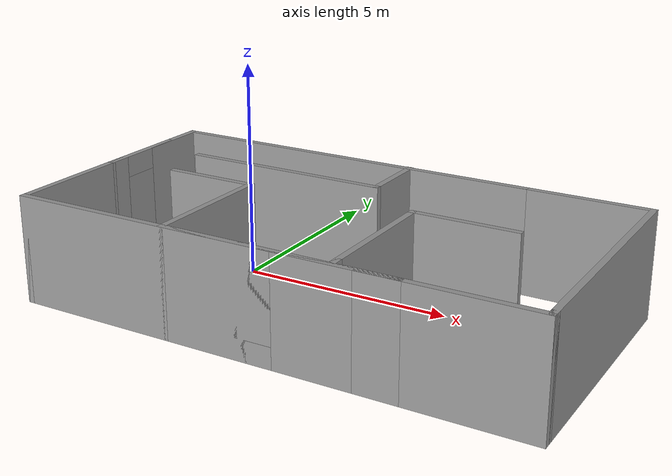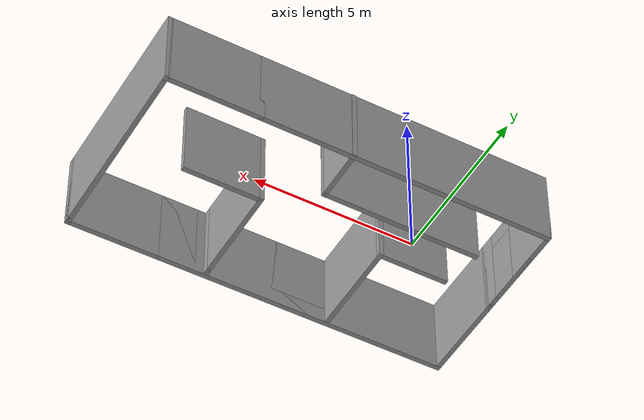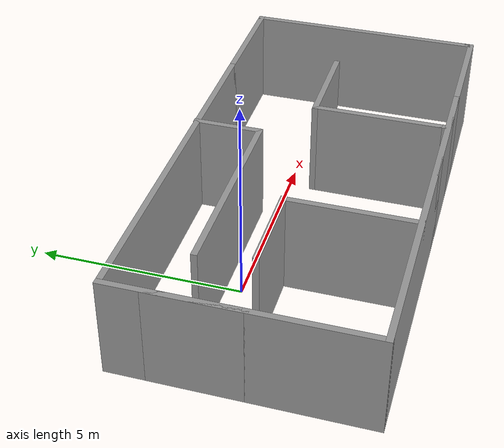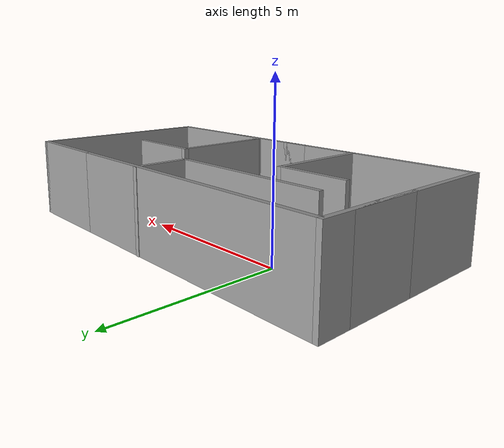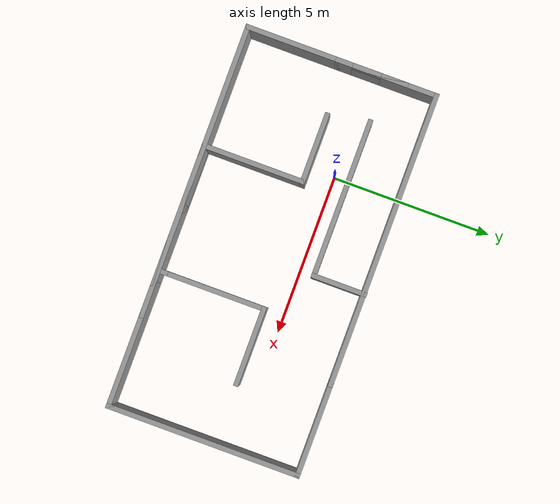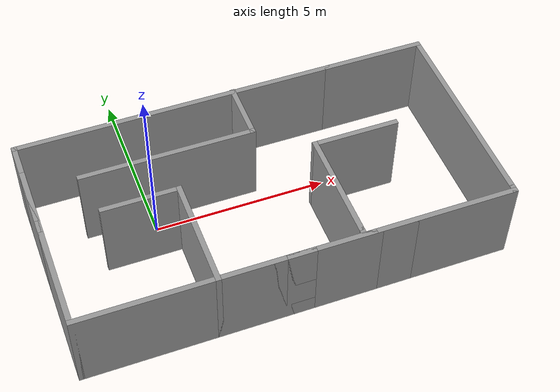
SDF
<?xml version='1.0'?>
<sdf version='1.7'>
  <model name='bzzroom'>
    <pose>2.76444 -0.93605 0 0 -0 0</pose>
    <link name='Wall_0'>
      <collision name='Wall_0_Collision'>
        <geometry>
          <box>
            <size>3 0.15 2.5</size>
          </box>
        </geometry>
        <pose>0 0 1.25 0 -0 0</pose>
      </collision>
      <visual name='Wall_0_Visual'>
        <pose>0 0 1.25 0 -0 0</pose>
        <geometry>
          <box>
            <size>3 0.15 2.5</size>
          </box>
        </geometry>
        <material>
          <script>
            <uri>file://media/materials/scripts/gazebo.material</uri>
            <name>Gazebo/Grey</name>
          </script>
          <ambient>1 1 1 1</ambient>
        </material>
        <meta>
          <layer>0</layer>
        </meta>
      </visual>
      <pose>-5.97444 -1.55895 0 0 -0 -1.5708</pose>
    </link>
    <link name='Wall_1'>
      <collision name='Wall_1_Collision'>
        <geometry>
          <box>
            <size>9.25 0.15 2.5</size>
          </box>
        </geometry>
        <pose>0 0 1.25 0 -0 0</pose>
      </collision>
      <visual name='Wall_1_Visual'>
        <pose>0 0 1.25 0 -0 0</pose>
        <geometry>
          <box>
            <size>9.25 0.15 2.5</size>
          </box>
        </geometry>
        <material>
          <script>
            <uri>file://media/materials/scripts/gazebo.material</uri>
            <name>Gazebo/Grey</name>
          </script>
          <ambient>1 1 1 1</ambient>
        </material>
        <meta>
          <layer>0</layer>
        </meta>
      </visual>
      <pose>-1.42444 -2.98395 0 0 -0 0</pose>
    </link>
    <link name='Wall_10'>
      <pose>-5.97444 1.41605 0 0 -0 1.5708</pose>
      <visual name='Wall_10_Visual_0'>
        <pose>-1.35618 0 1.25 0 -0 0</pose>
        <geometry>
          <box>
            <size>0.537631 0.15 2.5</size>
          </box>
        </geometry>
        <material>
          <script>
            <uri>file://media/materials/scripts/gazebo.material</uri>
            <name>Gazebo/Grey</name>
          </script>
          <ambient>1 1 1 1</ambient>
        </material>
        <meta>
          <layer>0</layer>
        </meta>
      </visual>
      <collision name='Wall_10_Collision_0'>
        <geometry>
          <box>
            <size>0.537631 0.15 2.5</size>
          </box>
        </geometry>
        <pose>-1.35618 0 1.25 0 -0 0</pose>
      </collision>
      <visual name='Wall_10_Visual_1'>
        <pose>0.718816 0 1.25 0 -0 0</pose>
        <geometry>
          <box>
            <size>1.81237 0.15 2.5</size>
          </box>
        </geometry>
        <material>
          <script>
            <uri>file://media/materials/scripts/gazebo.material</uri>
            <name>Gazebo/Grey</name>
          </script>
          <ambient>1 1 1 1</ambient>
        </material>
        <meta>
          <layer>0</layer>
        </meta>
      </visual>
      <collision name='Wall_10_Collision_1'>
        <geometry>
          <box>
            <size>1.81237 0.15 2.5</size>
          </box>
        </geometry>
        <pose>0.718816 0 1.25 0 -0 0</pose>
      </collision>
      <visual name='Wall_10_Visual_2'>
        <pose>-0.637369 0 2.25 0 -0 0</pose>
        <geometry>
          <box>
            <size>0.9 0.15 0.5</size>
          </box>
        </geometry>
        <material>
          <script>
            <uri>file://media/materials/scripts/gazebo.material</uri>
            <name>Gazebo/Grey</name>
          </script>
          <ambient>1 1 1 1</ambient>
        </material>
        <meta>
          <layer>0</layer>
        </meta>
      </visual>
      <collision name='Wall_10_Collision_2'>
        <geometry>
          <box>
            <size>0.9 0.15 0.5</size>
          </box>
        </geometry>
        <pose>-0.637369 0 2.25 0 -0 0</pose>
      </collision>
    </link>
    <link name='Wall_11'>
      <collision name='Wall_11_Collision'>
        <geometry>
          <box>
            <size>9.25 0.15 2.5</size>
          </box>
        </geometry>
        <pose>0 0 1.25 0 -0 0</pose>
      </collision>
      <visual name='Wall_11_Visual'>
        <pose>0 0 1.25 0 -0 0</pose>
        <geometry>
          <box>
            <size>9.25 0.15 2.5</size>
          </box>
        </geometry>
        <material>
          <script>
            <uri>file://media/materials/scripts/gazebo.material</uri>
            <name>Gazebo/Grey</name>
          </script>
          <ambient>1 1 1 1</ambient>
        </material>
        <meta>
          <layer>0</layer>
        </meta>
      </visual>
      <pose>-1.42444 2.96605 0 0 -0 0</pose>
    </link>
    <link name='Wall_12'>
      <collision name='Wall_12_Collision'>
        <geometry>
          <box>
            <size>3 0.15 2.5</size>
          </box>
        </geometry>
        <pose>0 0 1.25 0 -0 0</pose>
      </collision>
      <visual name='Wall_12_Visual'>
        <pose>0 0 1.25 0 -0 0</pose>
        <geometry>
          <box>
            <size>3 0.15 2.5</size>
          </box>
        </geometry>
        <material>
          <script>
            <uri>file://media/materials/scripts/gazebo.material</uri>
            <name>Gazebo/Grey</name>
          </script>
          <ambient>1 1 1 1</ambient>
        </material>
        <meta>
          <layer>0</layer>
        </meta>
      </visual>
      <pose>4.55056 2.96605 0 0 -0 0</pose>
    </link>
    <link name='Wall_13'>
      <collision name='Wall_13_Collision'>
        <geometry>
          <box>
            <size>6 0.15 2.5</size>
          </box>
        </geometry>
        <pose>0 0 1.25 0 -0 0</pose>
      </collision>
      <visual name='Wall_13_Visual'>
        <pose>0 0 1.25 0 -0 0</pose>
        <geometry>
          <box>
            <size>6 0.15 2.5</size>
          </box>
        </geometry>
        <material>
          <script>
            <uri>file://media/materials/scripts/gazebo.material</uri>
            <name>Gazebo/Grey</name>
          </script>
          <ambient>1 1 1 1</ambient>
        </material>
        <meta>
          <layer>0</layer>
        </meta>
      </visual>
      <pose>5.97556 0.04105 0 0 -0 -1.5708</pose>
    </link>
    <link name='Wall_14'>
      <collision name='Wall_14_Collision'>
        <geometry>
          <box>
            <size>0.15 0.15 2.5</size>
          </box>
        </geometry>
        <pose>0 0 1.25 0 -0 0</pose>
      </collision>
      <visual name='Wall_14_Visual'>
        <pose>0 0 1.25 0 -0 0</pose>
        <geometry>
          <box>
            <size>0.15 0.15 2.5</size>
          </box>
        </geometry>
        <material>
          <script>
            <uri>file://media/materials/scripts/gazebo.material</uri>
            <name>Gazebo/Grey</name>
          </script>
          <ambient>1 1 1 1</ambient>
        </material>
        <meta>
          <layer>0</layer>
        </meta>
      </visual>
      <pose>5.97556 -2.88395 0 0 -0 0</pose>
    </link>
    <link name='Wall_15'>
      <collision name='Wall_15_Collision'>
        <geometry>
          <box>
            <size>0.15 0.15 2.5</size>
          </box>
        </geometry>
        <pose>0 0 1.25 0 -0 0</pose>
      </collision>
      <visual name='Wall_15_Visual'>
        <pose>0 0 1.25 0 -0 0</pose>
        <geometry>
          <box>
            <size>0.15 0.15 2.5</size>
          </box>
        </geometry>
        <material>
          <script>
            <uri>file://media/materials/scripts/gazebo.material</uri>
            <name>Gazebo/Grey</name>
          </script>
          <ambient>1 1 1 1</ambient>
        </material>
        <meta>
          <layer>0</layer>
        </meta>
      </visual>
      <pose>5.97556 -2.88395 0 0 -0 0</pose>
    </link>
    <link name='Wall_16'>
      <collision name='Wall_16_Collision'>
        <geometry>
          <box>
            <size>0.25 0.15 2.5</size>
          </box>
        </geometry>
        <pose>0 0 1.25 0 -0 0</pose>
      </collision>
      <visual name='Wall_16_Visual'>
        <pose>0 0 1.25 0 -0 0</pose>
        <geometry>
          <box>
            <size>0.25 0.15 2.5</size>
          </box>
        </geometry>
        <material>
          <script>
            <uri>file://media/materials/scripts/gazebo.material</uri>
            <name>Gazebo/Grey</name>
          </script>
          <ambient>1 1 1 1</ambient>
        </material>
        <meta>
          <layer>0</layer>
        </meta>
      </visual>
      <pose>5.97556 -2.93395 0 0 -0 -1.5708</pose>
    </link>
    <link name='Wall_17'>
      <collision name='Wall_17_Collision'>
        <geometry>
          <box>
            <size>4 0.15 2.5</size>
          </box>
        </geometry>
        <pose>0 0 1.25 0 -0 0</pose>
      </collision>
      <visual name='Wall_17_Visual'>
        <pose>0 0 1.25 0 -0 0</pose>
        <geometry>
          <box>
            <size>4 0.15 2.5</size>
          </box>
        </geometry>
        <material>
          <script>
            <uri>file://media/materials/scripts/gazebo.material</uri>
            <name>Gazebo/Grey</name>
          </script>
          <ambient>1 1 1 1</ambient>
        </material>
        <meta>
          <layer>0</layer>
        </meta>
      </visual>
      <pose>4.05056 -2.98395 0 0 -0 3.14159</pose>
    </link>
    <link name='Wall_18'>
      <pose>-0.049437 -2.98395 0 0 -0 3.14159</pose>
      <visual name='Wall_18_Visual_0'>
        <pose>-1.35048 0 1.25 0 -0 0</pose>
        <geometry>
          <box>
            <size>1.79905 0.15 2.5</size>
          </box>
        </geometry>
        <material>
          <script>
            <uri>file://media/materials/scripts/gazebo.material</uri>
            <name>Gazebo/Grey</name>
          </script>
          <ambient>1 1 1 1</ambient>
        </material>
        <meta>
          <layer>0</layer>
        </meta>
      </visual>
      <collision name='Wall_18_Collision_0'>
        <geometry>
          <box>
            <size>1.79905 0.15 2.5</size>
          </box>
        </geometry>
        <pose>-1.35048 0 1.25 0 -0 0</pose>
      </collision>
      <visual name='Wall_18_Visual_1'>
        <pose>0.899525 0 0.25 0 -0 0</pose>
        <geometry>
          <box>
            <size>2.70095 0.15 0.5</size>
          </box>
        </geometry>
        <material>
          <script>
            <uri>file://media/materials/scripts/gazebo.material</uri>
            <name>Gazebo/Grey</name>
          </script>
          <ambient>1 1 1 1</ambient>
        </material>
        <meta>
          <layer>0</layer>
        </meta>
      </visual>
      <collision name='Wall_18_Collision_1'>
        <geometry>
          <box>
            <size>2.70095 0.15 0.5</size>
          </box>
        </geometry>
        <pose>0.899525 0 0.25 0 -0 0</pose>
      </collision>
      <visual name='Wall_18_Visual_2'>
        <pose>1.29953 0 1.5 0 -0 0</pose>
        <geometry>
          <box>
            <size>1.90095 0.15 2</size>
          </box>
        </geometry>
        <material>
          <script>
            <uri>file://media/materials/scripts/gazebo.material</uri>
            <name>Gazebo/Grey</name>
          </script>
          <ambient>1 1 1 1</ambient>
        </material>
        <meta>
          <layer>0</layer>
        </meta>
      </visual>
      <collision name='Wall_18_Collision_2'>
        <geometry>
          <box>
            <size>1.90095 0.15 2</size>
          </box>
        </geometry>
        <pose>1.29953 0 1.5 0 -0 0</pose>
      </collision>
      <visual name='Wall_18_Visual_3'>
        <pose>-0.05095 0 1.9 0 -0 0</pose>
        <geometry>
          <box>
            <size>0.8 0.15 1.2</size>
          </box>
        </geometry>
        <material>
          <script>
            <uri>file://media/materials/scripts/gazebo.material</uri>
            <name>Gazebo/Grey</name>
          </script>
          <ambient>1 1 1 1</ambient>
        </material>
        <meta>
          <layer>0</layer>
        </meta>
      </visual>
      <collision name='Wall_18_Collision_3'>
        <geometry>
          <box>
            <size>0.8 0.15 1.2</size>
          </box>
        </geometry>
        <pose>-0.05095 0 1.9 0 -0 0</pose>
      </collision>
    </link>
    <link name='Wall_19'>
      <collision name='Wall_19_Collision'>
        <geometry>
          <box>
            <size>3.25 0.15 2.5</size>
          </box>
        </geometry>
        <pose>0 0 1.25 0 -0 0</pose>
      </collision>
      <visual name='Wall_19_Visual'>
        <pose>0 0 1.25 0 -0 0</pose>
        <geometry>
          <box>
            <size>3.25 0.15 2.5</size>
          </box>
        </geometry>
        <material>
          <script>
            <uri>file://media/materials/scripts/gazebo.material</uri>
            <name>Gazebo/Grey</name>
          </script>
          <ambient>1 1 1 1</ambient>
        </material>
        <meta>
          <layer>0</layer>
        </meta>
      </visual>
      <pose>-2.22444 -1.43395 0 0 -0 1.5708</pose>
    </link>
    <link name='Wall_20'>
      <collision name='Wall_20_Collision'>
        <geometry>
          <box>
            <size>2.25 0.15 2.5</size>
          </box>
        </geometry>
        <pose>0 0 1.25 0 -0 0</pose>
      </collision>
      <visual name='Wall_20_Visual'>
        <pose>0 0 1.25 0 -0 0</pose>
        <geometry>
          <box>
            <size>2.25 0.15 2.5</size>
          </box>
        </geometry>
        <material>
          <script>
            <uri>file://media/materials/scripts/gazebo.material</uri>
            <name>Gazebo/Grey</name>
          </script>
          <ambient>1 1 1 1</ambient>
        </material>
        <meta>
          <layer>0</layer>
        </meta>
      </visual>
      <pose>-3.27444 0.11605 0 0 -0 3.14159</pose>
    </link>
    <link name='Wall_23'>
      <collision name='Wall_23_Collision'>
        <geometry>
          <box>
            <size>1.75 0.15 2.5</size>
          </box>
        </geometry>
        <pose>0 0 1.25 0 -0 0</pose>
      </collision>
      <visual name='Wall_23_Visual'>
        <pose>0 0 1.25 0 -0 0</pose>
        <geometry>
          <box>
            <size>1.75 0.15 2.5</size>
          </box>
        </geometry>
        <material>
          <script>
            <uri>file://media/materials/scripts/gazebo.material</uri>
            <name>Gazebo/Grey</name>
          </script>
          <ambient>1 1 1 1</ambient>
        </material>
        <meta>
          <layer>0</layer>
        </meta>
      </visual>
      <pose>0.275271 2.18395 0 0 -0 -1.5708</pose>
    </link>
    <link name='Wall_24'>
      <collision name='Wall_24_Collision'>
        <geometry>
          <box>
            <size>5 0.15 2.5</size>
          </box>
        </geometry>
        <pose>0 0 1.25 0 -0 0</pose>
      </collision>
      <visual name='Wall_24_Visual'>
        <pose>0 0 1.25 0 -0 0</pose>
        <geometry>
          <box>
            <size>5 0.15 2.5</size>
          </box>
        </geometry>
        <material>
          <script>
            <uri>file://media/materials/scripts/gazebo.material</uri>
            <name>Gazebo/Grey</name>
          </script>
          <ambient>1 1 1 1</ambient>
        </material>
        <meta>
          <layer>0</layer>
        </meta>
      </visual>
      <pose>-2.14973 1.38395 0 0 -0 3.14159</pose>
    </link>
    <link name='Wall_26'>
      <collision name='Wall_26_Collision'>
        <geometry>
          <box>
            <size>3.25 0.15 2.5</size>
          </box>
        </geometry>
        <pose>0 0 1.25 0 -0 0</pose>
      </collision>
      <visual name='Wall_26_Visual'>
        <pose>0 0 1.25 0 -0 0</pose>
        <geometry>
          <box>
            <size>3.25 0.15 2.5</size>
          </box>
        </geometry>
        <material>
          <script>
            <uri>file://media/materials/scripts/gazebo.material</uri>
            <name>Gazebo/Grey</name>
          </script>
          <ambient>1 1 1 1</ambient>
        </material>
        <meta>
          <layer>0</layer>
        </meta>
      </visual>
      <pose>1.70489 -1.21237 0 0 -0 -1.5708</pose>
    </link>
    <link name='Wall_29'>
      <collision name='Wall_29_Collision'>
        <geometry>
          <box>
            <size>0.25 0.15 2.5</size>
          </box>
        </geometry>
        <pose>0 0 1.25 0 -0 0</pose>
      </collision>
      <visual name='Wall_29_Visual'>
        <pose>0 0 1.25 0 -0 0</pose>
        <geometry>
          <box>
            <size>0.25 0.15 2.5</size>
          </box>
        </geometry>
        <material>
          <script>
            <uri>file://media/materials/scripts/gazebo.material</uri>
            <name>Gazebo/Grey</name>
          </script>
          <ambient>1 1 1 1</ambient>
        </material>
        <meta>
          <layer>0</layer>
        </meta>
      </visual>
      <pose>1.70489 -2.81237 0 0 -0 -1.5708</pose>
    </link>
    <link name='Wall_31'>
      <collision name='Wall_31_Collision'>
        <geometry>
          <box>
            <size>2.5 0.15 2.5</size>
          </box>
        </geometry>
        <pose>0 0 1.25 0 -0 0</pose>
      </collision>
      <visual name='Wall_31_Visual'>
        <pose>0 0 1.25 0 -0 0</pose>
        <geometry>
          <box>
            <size>2.5 0.15 2.5</size>
          </box>
        </geometry>
        <material>
          <script>
            <uri>file://media/materials/scripts/gazebo.material</uri>
            <name>Gazebo/Grey</name>
          </script>
          <ambient>1 1 1 1</ambient>
        </material>
        <meta>
          <layer>0</layer>
        </meta>
      </visual>
      <pose>2.87989 0.337628 0 0 -0 0</pose>
    </link>
    <link name='Wall_9'>
      <collision name='Wall_9_Collision'>
        <geometry>
          <box>
            <size>2.27933 0.15 2.5</size>
          </box>
        </geometry>
        <pose>0 0 1.25 0 -0 0</pose>
      </collision>
      <visual name='Wall_9_Visual'>
        <pose>0 0 1.25 0 -0 0</pose>
        <geometry>
          <box>
            <size>2.27933 0.15 2.5</size>
          </box>
        </geometry>
        <material>
          <script>
            <uri>file://media/materials/scripts/gazebo.material</uri>
            <name>Gazebo/Grey</name>
          </script>
          <ambient>1 1 1 1</ambient>
        </material>
        <meta>
          <layer>0</layer>
        </meta>
      </visual>
      <pose>-5.97498 0.930716 0 0 -0 -1.57028</pose>
    </link>
    <static>1</static>
  </model>
</sdf>
